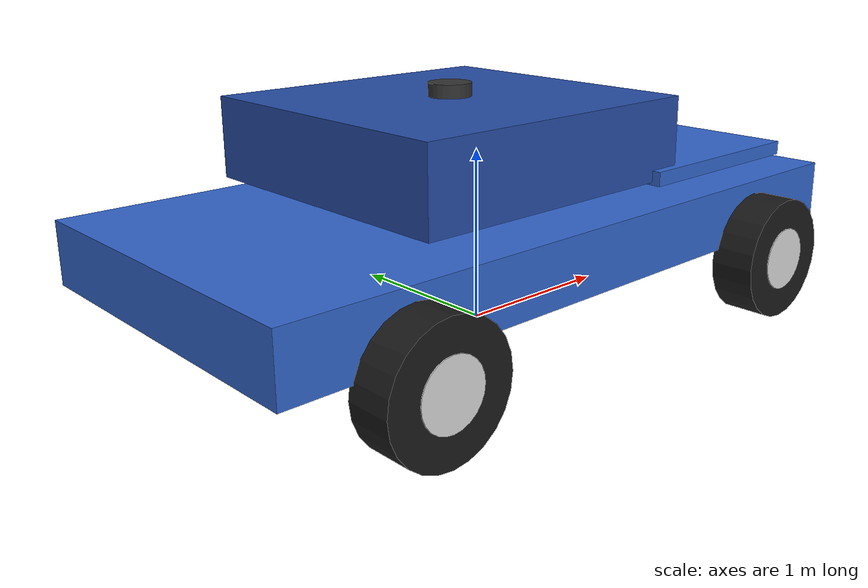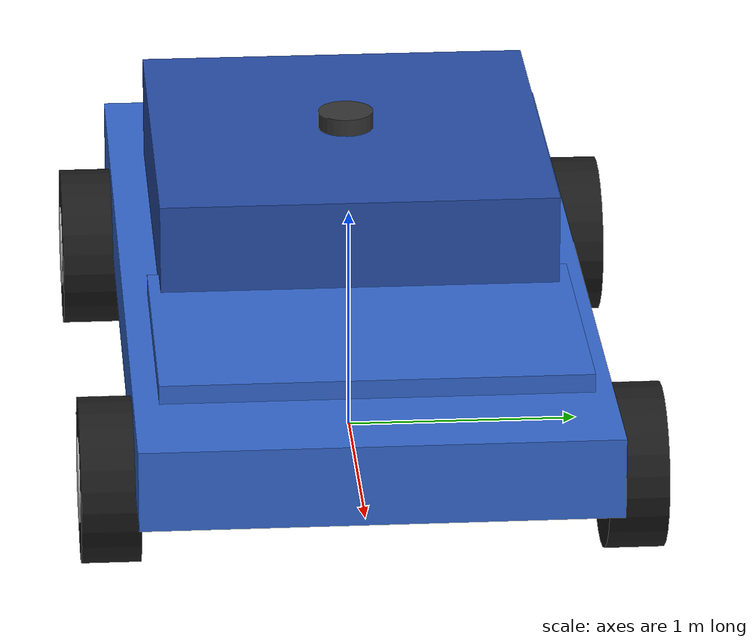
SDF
<?xml version="1.0"?>
<sdf version="1.9">
  <model name="ekf_car">

    <!-- ================================================================
         Base link (car body)
         ================================================================ -->
    <link name="base_link">
      <pose>0 0 0.7 0 0 0</pose>
      <inertial>
        <mass>20.0</mass>
        <inertia>
          <ixx>5.0</ixx><ixy>0</ixy><ixz>0</ixz>
          <iyy>20.0</iyy><iyz>0</iyz>
          <izz>22.5</izz>
        </inertia>
      </inertial>
      <!-- chassis — lower body -->
      <visual name="chassis">
        <pose>0 0 -0.1 0 0 0</pose>
        <geometry><box><size>4.0 2.0 0.35</size></box></geometry>
        <material><ambient>0.2 0.4 0.8 1</ambient><diffuse>0.2 0.4 0.8 1</diffuse></material>
      </visual>
      <!-- cabin — raised passenger cell, offset rearward -->
      <visual name="cabin">
        <pose>-0.2 0 0.4 0 0 0</pose>
        <geometry><box><size>1.8 1.7 0.45</size></box></geometry>
        <material><ambient>0.15 0.3 0.65 1</ambient><diffuse>0.15 0.3 0.65 1</diffuse></material>
      </visual>
      <!-- hood — low front section -->
      <visual name="hood">
        <pose>1.1 0 0.2 0 0 0</pose>
        <geometry><box><size>1.2 1.8 0.08</size></box></geometry>
        <material><ambient>0.2 0.4 0.8 1</ambient><diffuse>0.2 0.4 0.8 1</diffuse></material>
      </visual>
      <!-- LiDAR housing on roof -->
      <visual name="lidar_housing">
        <pose>-0.2 0 0.65 0 0 0</pose>
        <geometry><cylinder><radius>0.12</radius><length>0.1</length></cylinder></geometry>
        <material><ambient>0.2 0.2 0.2 1</ambient><diffuse>0.2 0.2 0.2 1</diffuse></material>
      </visual>
      <collision name="body_collision">
        <geometry>
          <box><size>4.0 2.0 0.6</size></box>
        </geometry>
      </collision>

      <!-- LiDAR sensor (VLP-16 style, roof-mounted) -->
      <!-- Note: gpu_lidar requires ogre2 render engine (add Sensors plugin to world).
           If your system lacks GPU support, change type to "lidar" (CPU-based). -->
      <sensor name="lidar" type="gpu_lidar">
        <pose>0 0 0.8 0 0 0</pose>
        <topic>/lidar</topic>
        <update_rate>10</update_rate>
        <lidar>
          <scan>
            <horizontal>
              <samples>720</samples>
              <resolution>1</resolution>
              <min_angle>-3.14159265</min_angle>
              <max_angle>3.14159265</max_angle>
            </horizontal>
            <vertical>
              <samples>16</samples>
              <resolution>1</resolution>
              <min_angle>-0.26179939</min_angle>
              <max_angle>0.26179939</max_angle>
            </vertical>
          </scan>
          <range>
            <min>0.1</min>
            <max>20.0</max>
            <resolution>0.001</resolution>
          </range>
          <noise>
            <type>gaussian</type>
            <mean>0.0</mean>
            <stddev>0.015</stddev>
          </noise>
        </lidar>
        <alwaysOn>1</alwaysOn>
        <visualize>true</visualize>
      </sensor>
    </link>

    <link name="front_left_wheel">
      <pose>1.3 1.1 0.35 1.5707963 0 0</pose>
      <inertial>
        <mass>2.0</mass>
        <inertia><ixx>0.05</ixx><ixy>0</ixy><ixz>0</ixz>
                 <iyy>0.05</iyy><iyz>0</iyz><izz>0.05</izz></inertia>
      </inertial>
      <visual name="vis">
        <geometry><cylinder><radius>0.35</radius><length>0.25</length></cylinder></geometry>
        <material><ambient>0.1 0.1 0.1 1</ambient><diffuse>0.1 0.1 0.1 1</diffuse></material>
      </visual>
      <visual name="hub">
        <geometry><cylinder><radius>0.18</radius><length>0.26</length></cylinder></geometry>
        <material><ambient>0.85 0.85 0.85 1</ambient><diffuse>0.85 0.85 0.85 1</diffuse></material>
      </visual>
      <collision name="col">
        <geometry><cylinder><radius>0.35</radius><length>0.25</length></cylinder></geometry>
        <surface><friction><ode><mu>0.0</mu><mu2>0.0</mu2></ode></friction></surface>
      </collision>
    </link>

    <link name="front_right_wheel">
      <pose>1.3 -1.1 0.35 1.5707963 0 0</pose>
      <inertial>
        <mass>2.0</mass>
        <inertia><ixx>0.05</ixx><ixy>0</ixy><ixz>0</ixz>
                 <iyy>0.05</iyy><iyz>0</iyz><izz>0.05</izz></inertia>
      </inertial>
      <visual name="vis">
        <geometry><cylinder><radius>0.35</radius><length>0.25</length></cylinder></geometry>
        <material><ambient>0.1 0.1 0.1 1</ambient><diffuse>0.1 0.1 0.1 1</diffuse></material>
      </visual>
      <visual name="hub">
        <geometry><cylinder><radius>0.18</radius><length>0.26</length></cylinder></geometry>
        <material><ambient>0.85 0.85 0.85 1</ambient><diffuse>0.85 0.85 0.85 1</diffuse></material>
      </visual>
      <collision name="col">
        <geometry><cylinder><radius>0.35</radius><length>0.25</length></cylinder></geometry>
        <surface><friction><ode><mu>0.0</mu><mu2>0.0</mu2></ode></friction></surface>
      </collision>
    </link>

    <link name="rear_left_wheel">
      <pose>-1.3 1.1 0.35 1.5707963 0 0</pose>
      <inertial>
        <mass>2.0</mass>
        <inertia><ixx>0.05</ixx><ixy>0</ixy><ixz>0</ixz>
                 <iyy>0.05</iyy><iyz>0</iyz><izz>0.05</izz></inertia>
      </inertial>
      <visual name="vis">
        <geometry><cylinder><radius>0.35</radius><length>0.25</length></cylinder></geometry>
        <material><ambient>0.1 0.1 0.1 1</ambient><diffuse>0.1 0.1 0.1 1</diffuse></material>
      </visual>
      <visual name="hub">
        <geometry><cylinder><radius>0.18</radius><length>0.26</length></cylinder></geometry>
        <material><ambient>0.85 0.85 0.85 1</ambient><diffuse>0.85 0.85 0.85 1</diffuse></material>
      </visual>
      <collision name="col">
        <geometry><cylinder><radius>0.35</radius><length>0.25</length></cylinder></geometry>
        <surface><friction><ode><mu>1.0</mu><mu2>1.0</mu2></ode></friction></surface>
      </collision>
    </link>

    <link name="rear_right_wheel">
      <pose>-1.3 -1.1 0.35 1.5707963 0 0</pose>
      <inertial>
        <mass>2.0</mass>
        <inertia><ixx>0.05</ixx><ixy>0</ixy><ixz>0</ixz>
                 <iyy>0.05</iyy><iyz>0</iyz><izz>0.05</izz></inertia>
      </inertial>
      <visual name="vis">
        <geometry><cylinder><radius>0.35</radius><length>0.25</length></cylinder></geometry>
        <material><ambient>0.1 0.1 0.1 1</ambient><diffuse>0.1 0.1 0.1 1</diffuse></material>
      </visual>
      <visual name="hub">
        <geometry><cylinder><radius>0.18</radius><length>0.26</length></cylinder></geometry>
        <material><ambient>0.85 0.85 0.85 1</ambient><diffuse>0.85 0.85 0.85 1</diffuse></material>
      </visual>
      <collision name="col">
        <geometry><cylinder><radius>0.35</radius><length>0.25</length></cylinder></geometry>
        <surface><friction><ode><mu>1.0</mu><mu2>1.0</mu2></ode></friction></surface>
      </collision>
    </link>

    <!-- ================================================================
         Joints
         ================================================================ -->

    <joint name="front_left_wheel_joint" type="revolute">
      <parent>base_link</parent><child>front_left_wheel</child>
      <axis><xyz expressed_in="__model__">0 1 0</xyz><limit><lower>-1e16</lower><upper>1e16</upper></limit></axis>
    </joint>

    <joint name="front_right_wheel_joint" type="revolute">
      <parent>base_link</parent><child>front_right_wheel</child>
      <axis><xyz expressed_in="__model__">0 1 0</xyz><limit><lower>-1e16</lower><upper>1e16</upper></limit></axis>
    </joint>

    <joint name="rear_left_wheel_joint" type="revolute">
      <parent>base_link</parent><child>rear_left_wheel</child>
      <axis><xyz expressed_in="__model__">0 1 0</xyz><limit><lower>-1e16</lower><upper>1e16</upper></limit></axis>
    </joint>

    <joint name="rear_right_wheel_joint" type="revolute">
      <parent>base_link</parent><child>rear_right_wheel</child>
      <axis><xyz expressed_in="__model__">0 1 0</xyz><limit><lower>-1e16</lower><upper>1e16</upper></limit></axis>
    </joint>

    <!-- ================================================================
         Plugins
         ================================================================ -->

    <!-- Differential drive: subscribes /cmd_vel (Gz), publishes /odom (Gz) -->
    <plugin filename="ignition-gazebo-diff-drive-system"
            name="gz::sim::systems::DiffDrive">
      <left_joint>rear_left_wheel_joint</left_joint>
      <right_joint>rear_right_wheel_joint</right_joint>
      <wheel_separation>2.2</wheel_separation>
      <wheel_radius>0.35</wheel_radius>
      <max_linear_acceleration>2.0</max_linear_acceleration>
      <topic>/cmd_vel</topic>
      <odom_topic>/odom</odom_topic>
      <frame_id>odom</frame_id>
      <child_frame_id>base_link</child_frame_id>
      <odom_publish_frequency>50</odom_publish_frequency>
      <!-- TF not bridged to ROS — EKF publishes map→base_link TF directly -->
      <tf_topic>/gz/tf_unused</tf_topic>
    </plugin>

  </model>
</sdf>
